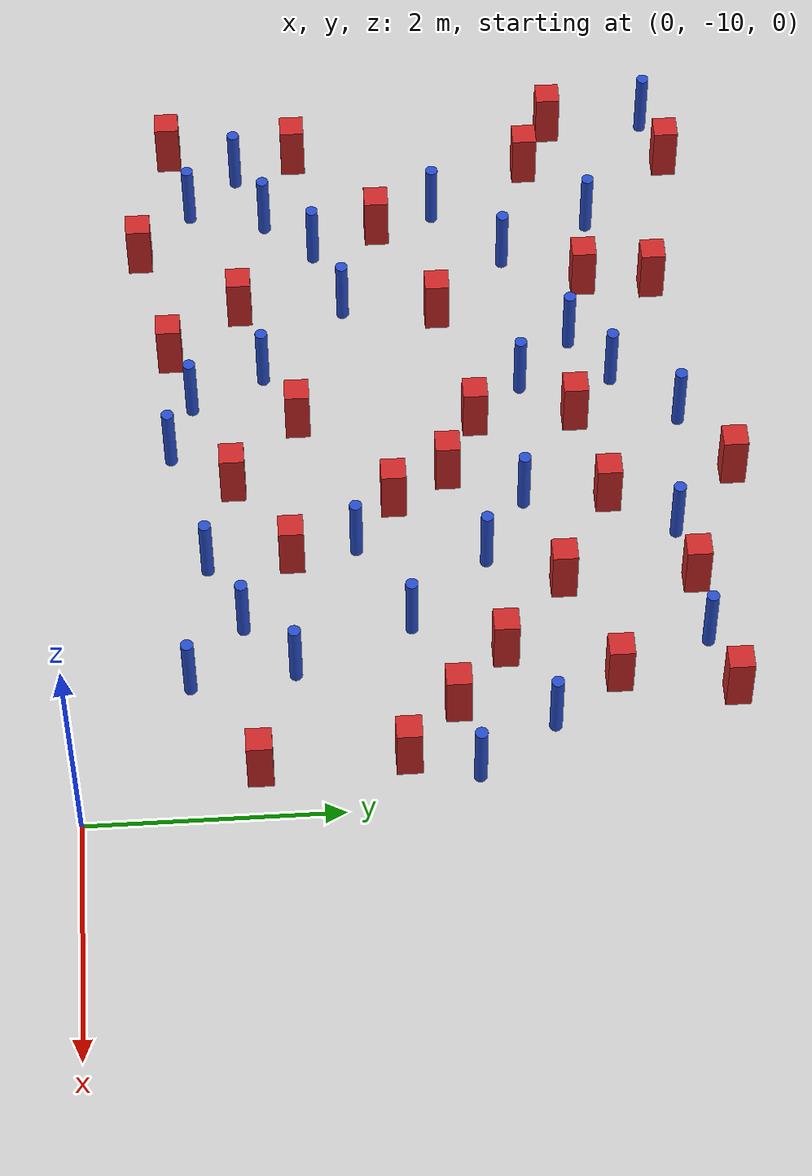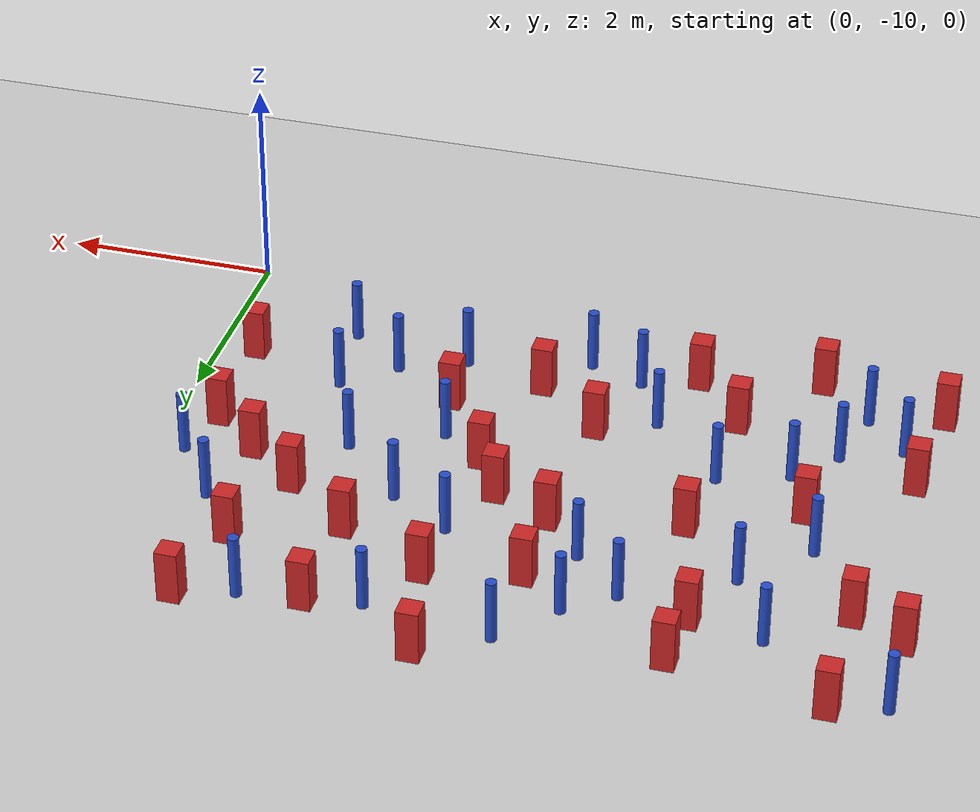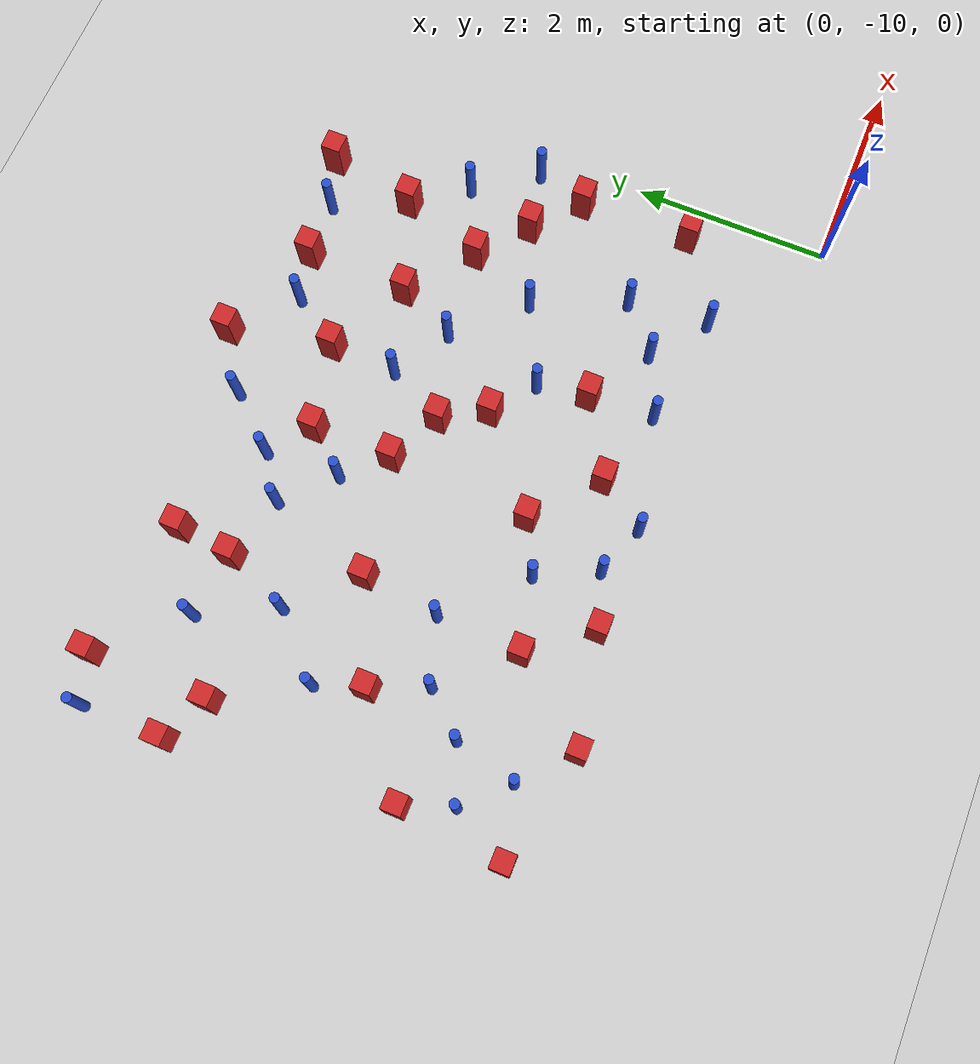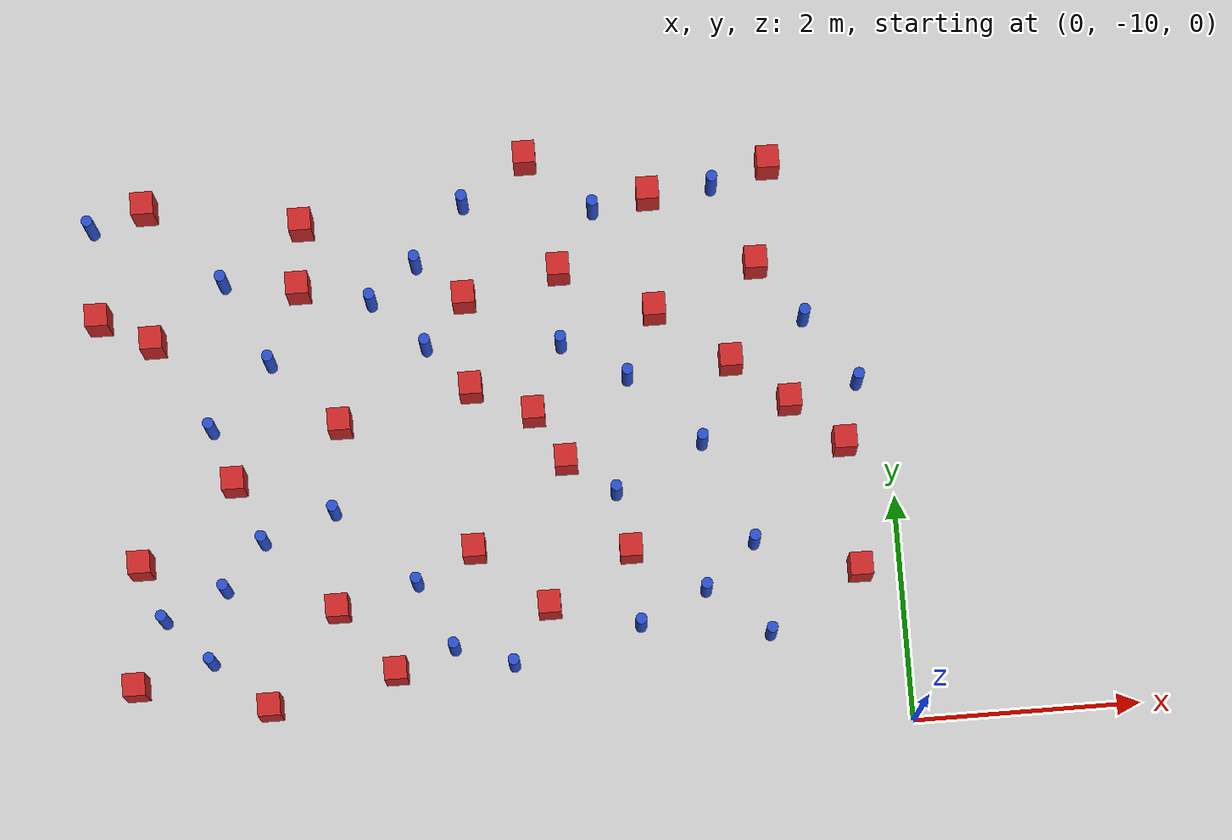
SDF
<sdf version="1.6">
 <world name="default">
  <model name="ground_plane">
   <static>1</static>
   <link name="link">
    <collision name="collision">
     <geometry><plane><normal>0 0 1</normal><size>100 100</size></plane></geometry>
     <surface><friction><ode><mu>100</mu><mu2>50</mu2></ode></friction></surface>
    </collision>
    <visual name="visual">
     <cast_shadows>0</cast_shadows>
     <geometry><plane><normal>0 0 1</normal><size>100 100</size></plane></geometry>
     <material>
      <ambient>1.0 1.0 1.0 1.0</ambient>
      <diffuse>0.8 0.8 0.8 1.0</diffuse>
      <specular>0.01 0.01 0.01 1.000000</specular>
     </material>
    </visual>
   </link>
  </model>
  <model name="square_post_obstacle0">
   <static>true</static>
   <pose>-4.85381373403 -7.01380886418 8.22691968438e-08 7.22125133819e-06 -7.54495500217e-07 2.29674213826e-05</pose>
   <link name="link">
    <pose>0 0 0.25 0 -0 0</pose>
    <inertial>
     <mass>100</mass>
     <inertia>
      <ixx>0.166667</ixx>
      <ixy>0</ixy>
      <ixz>0</ixz>
      <iyy>0.166667</iyy>
      <iyz>0</iyz>
      <izz>0.166667</izz>
     </inertia>
    </inertial>
    <collision name="collision"><geometry><box><size>.2 .2 .5</size></box></geometry></collision>
    <visual name="visual">
     <geometry><box><size>.2 .2 .5</size></box></geometry>
     <material>
      <script><name>Gazebo/Red</name><uri>file://media/materials/scripts/gazebo.material</uri></script>
     </material>
    </visual>
   </link>
  </model>
  <model name="square_post_obstacle1">
   <static>true</static>
   <pose>-6.47186797774 -4.94214520173 8.22691968438e-08 7.22125133819e-06 -7.54495500217e-07 2.29674213826e-05</pose>
   <link name="link">
    <pose>0 0 0.25 0 -0 0</pose>
    <inertial>
     <mass>100</mass>
     <inertia>
      <ixx>0.166667</ixx>
      <ixy>0</ixy>
      <ixz>0</ixz>
      <iyy>0.166667</iyy>
      <iyz>0</iyz>
      <izz>0.166667</izz>
     </inertia>
    </inertial>
    <collision name="collision"><geometry><box><size>.2 .2 .5</size></box></geometry></collision>
    <visual name="visual">
     <geometry><box><size>.2 .2 .5</size></box></geometry>
     <material>
      <script><name>Gazebo/Red</name><uri>file://media/materials/scripts/gazebo.material</uri></script>
     </material>
    </visual>
   </link>
  </model>
  <model name="square_post_obstacle6">
   <static>true</static>
   <pose>-4.50291544065 -9.248557642 8.22691968438e-08 7.2212513382e-06 -7.54495500217e-07 2.29674213826e-05</pose>
   <link name="link">
    <pose>0 0 0.25 0 -0 0</pose>
    <inertial>
     <mass>100</mass>
     <inertia>
      <ixx>0.166667</ixx>
      <ixy>0</ixy>
      <ixz>0</ixz>
      <iyy>0.166667</iyy>
      <iyz>0</iyz>
      <izz>0.166667</izz>
     </inertia>
    </inertial>
    <collision name="collision"><geometry><box><size>.2 .2 .5</size></box></geometry></collision>
    <visual name="visual">
     <geometry><box><size>.2 .2 .5</size></box></geometry>
     <material>
      <script><name>Gazebo/Red</name><uri>file://media/materials/scripts/gazebo.material</uri></script>
     </material>
    </visual>
   </link>
  </model>
  <model name="pole_obstacle4">
   <static>true</static>
   <pose>-4.50905731509 -5.93586208997 2.88873142074e-08 -9.90536690842e-09 4.60219948965e-07 -1.20965994976e-07</pose>
   <link name="link">
    <pose>0 0 0.3 0 -0 0</pose>
    <inertial>
     <mass>1</mass>
     <inertia><ixx>0.145833</ixx><ixy>0</ixy><ixz>0</ixz><iyy>0.145833</iyy><iyz>0</iyz><izz>0.125</izz></inertia>
    </inertial>
    <collision name="collision">
     <geometry><cylinder><radius>0.05</radius><length>.6</length></cylinder></geometry>
    </collision>
    <visual name="visual">
     <geometry><cylinder><radius>0.05</radius><length>.6</length></cylinder></geometry>
     <material>
      <script><name>Gazebo/Blue</name><uri>file://media/materials/scripts/gazebo.material</uri></script>
     </material>
    </visual>
   </link>
  </model>
  <model name="square_post_obstacle17">
   <static>true</static>
   <pose>-2.82780362628 -5.76743023222 8.22691968438e-08 7.2212513382e-06 -7.54495500217e-07 2.29674213826e-05</pose>
   <link name="link">
    <pose>0 0 0.25 0 -0 0</pose>
    <inertial>
     <mass>100</mass>
     <inertia>
      <ixx>0.166667</ixx>
      <ixy>0</ixy>
      <ixz>0</ixz>
      <iyy>0.166667</iyy>
      <iyz>0</iyz>
      <izz>0.166667</izz>
     </inertia>
    </inertial>
    <collision name="collision"><geometry><box><size>.2 .2 .5</size></box></geometry></collision>
    <visual name="visual">
     <geometry><box><size>.2 .2 .5</size></box></geometry>
     <material>
      <script><name>Gazebo/Red</name><uri>file://media/materials/scripts/gazebo.material</uri></script>
     </material>
    </visual>
   </link>
  </model>
  <model name="pole_obstacle14">
   <static>true</static>
   <pose>-1.40718546428 -5.10483130645 2.88873142074e-08 -9.90536689852e-09 4.60219948989e-07 -1.2096599496e-07</pose>
   <link name="link">
    <pose>0 0 0.3 0 -0 0</pose>
    <inertial>
     <mass>1</mass>
     <inertia><ixx>0.145833</ixx><ixy>0</ixy><ixz>0</ixz><iyy>0.145833</iyy><iyz>0</iyz><izz>0.125</izz></inertia>
    </inertial>
    <collision name="collision">
     <geometry><cylinder><radius>0.05</radius><length>.6</length></cylinder></geometry>
    </collision>
    <visual name="visual">
     <geometry><cylinder><radius>0.05</radius><length>.6</length></cylinder></geometry>
     <material>
      <script><name>Gazebo/Blue</name><uri>file://media/materials/scripts/gazebo.material</uri></script>
     </material>
    </visual>
   </link>
  </model>
  <model name="square_post_obstacle24">
   <static>true</static>
   <pose>-2.3696107004 -8.32431781453 8.22691968438e-08 7.22125133819e-06 -7.54495500217e-07 2.29674213826e-05</pose>
   <link name="link">
    <pose>0 0 0.25 0 -0 0</pose>
    <inertial>
     <mass>100</mass>
     <inertia>
      <ixx>0.166667</ixx>
      <ixy>0</ixy>
      <ixz>0</ixz>
      <iyy>0.166667</iyy>
      <iyz>0</iyz>
      <izz>0.166667</izz>
     </inertia>
    </inertial>
    <collision name="collision"><geometry><box><size>.2 .2 .5</size></box></geometry></collision>
    <visual name="visual">
     <geometry><box><size>.2 .2 .5</size></box></geometry>
     <material>
      <script><name>Gazebo/Red</name><uri>file://media/materials/scripts/gazebo.material</uri></script>
     </material>
    </visual>
   </link>
  </model>
  <model name="square_post_obstacle26">
   <static>true</static>
   <pose>-6.68108062466 -8.1485355378 8.22691968438e-08 7.2212513382e-06 -7.54495500217e-07 2.29674213826e-05</pose>
   <link name="link">
    <pose>0 0 0.25 0 -0 0</pose>
    <inertial>
     <mass>100</mass>
     <inertia>
      <ixx>0.166667</ixx>
      <ixy>0</ixy>
      <ixz>0</ixz>
      <iyy>0.166667</iyy>
      <iyz>0</iyz>
      <izz>0.166667</izz>
     </inertia>
    </inertial>
    <collision name="collision"><geometry><box><size>.2 .2 .5</size></box></geometry></collision>
    <visual name="visual">
     <geometry><box><size>.2 .2 .5</size></box></geometry>
     <material>
      <script><name>Gazebo/Red</name><uri>file://media/materials/scripts/gazebo.material</uri></script>
     </material>
    </visual>
   </link>
  </model>
  <model name="pole_obstacle25">
   <static>true</static>
   <pose>-5.80819248637 -5.67410705577 2.88873142074e-08 -9.90536690842e-09 4.60219948965e-07 -1.20965994976e-07</pose>
   <link name="link">
    <pose>0 0 0.3 0 -0 0</pose>
    <inertial>
     <mass>1</mass>
     <inertia><ixx>0.145833</ixx><ixy>0</ixy><ixz>0</ixz><iyy>0.145833</iyy><iyz>0</iyz><izz>0.125</izz></inertia>
    </inertial>
    <collision name="collision">
     <geometry><cylinder><radius>0.05</radius><length>.6</length></cylinder></geometry>
    </collision>
    <visual name="visual">
     <geometry><cylinder><radius>0.05</radius><length>.6</length></cylinder></geometry>
     <material>
      <script><name>Gazebo/Blue</name><uri>file://media/materials/scripts/gazebo.material</uri></script>
     </material>
    </visual>
   </link>
  </model>
  <model name="square_post_obstacle32">
   <static>true</static>
   <pose>-3.12139781006 -8.76833713452 8.22691968438e-08 7.22125133819e-06 -7.54495500217e-07 2.29674213826e-05</pose>
   <link name="link">
    <pose>0 0 0.25 0 -0 0</pose>
    <inertial>
     <mass>100</mass>
     <inertia>
      <ixx>0.166667</ixx>
      <ixy>0</ixy>
      <ixz>0</ixz>
      <iyy>0.166667</iyy>
      <iyz>0</iyz>
      <izz>0.166667</izz>
     </inertia>
    </inertial>
    <collision name="collision"><geometry><box><size>.2 .2 .5</size></box></geometry></collision>
    <visual name="visual">
     <geometry><box><size>.2 .2 .5</size></box></geometry>
     <material>
      <script><name>Gazebo/Red</name><uri>file://media/materials/scripts/gazebo.material</uri></script>
     </material>
    </visual>
   </link>
  </model>
  <model name="pole_obstacle35">
   <static>true</static>
   <pose>-5.43748549901 -6.42257018722 2.88873142074e-08 -9.90536690842e-09 4.60219948965e-07 -1.20965994976e-07</pose>
   <link name="link">
    <pose>0 0 0.3 0 -0 0</pose>
    <inertial>
     <mass>1</mass>
     <inertia><ixx>0.145833</ixx><ixy>0</ixy><ixz>0</ixz><iyy>0.145833</iyy><iyz>0</iyz><izz>0.125</izz></inertia>
    </inertial>
    <collision name="collision">
     <geometry><cylinder><radius>0.05</radius><length>.6</length></cylinder></geometry>
    </collision>
    <visual name="visual">
     <geometry><cylinder><radius>0.05</radius><length>.6</length></cylinder></geometry>
     <material>
      <script><name>Gazebo/Blue</name><uri>file://media/materials/scripts/gazebo.material</uri></script>
     </material>
    </visual>
   </link>
  </model>
  <model name="square_post_obstacle36">
   <static>true</static>
   <pose>-2.88315658047 -7.48788729309 8.22691968438e-08 7.2212513382e-06 -7.54495500217e-07 2.29674213826e-05</pose>
   <link name="link">
    <pose>0 0 0.25 0 -0 0</pose>
    <inertial>
     <mass>100</mass>
     <inertia>
      <ixx>0.166667</ixx>
      <ixy>0</ixy>
      <ixz>0</ixz>
      <iyy>0.166667</iyy>
      <iyz>0</iyz>
      <izz>0.166667</izz>
     </inertia>
    </inertial>
    <collision name="collision"><geometry><box><size>.2 .2 .5</size></box></geometry></collision>
    <visual name="visual">
     <geometry><box><size>.2 .2 .5</size></box></geometry>
     <material>
      <script><name>Gazebo/Red</name><uri>file://media/materials/scripts/gazebo.material</uri></script>
     </material>
    </visual>
   </link>
  </model>
  <model name="pole_obstacle43">
   <static>true</static>
   <pose>-2.28324432116 -6.78165160745 2.88873142074e-08 -9.90536689859e-09 4.60219948989e-07 -1.20965994961e-07</pose>
   <link name="link">
    <pose>0 0 0.3 0 -0 0</pose>
    <inertial>
     <mass>1</mass>
     <inertia><ixx>0.145833</ixx><ixy>0</ixy><ixz>0</ixz><iyy>0.145833</iyy><iyz>0</iyz><izz>0.125</izz></inertia>
    </inertial>
    <collision name="collision">
     <geometry><cylinder><radius>0.05</radius><length>.6</length></cylinder></geometry>
    </collision>
    <visual name="visual">
     <geometry><cylinder><radius>0.05</radius><length>.6</length></cylinder></geometry>
     <material>
      <script><name>Gazebo/Blue</name><uri>file://media/materials/scripts/gazebo.material</uri></script>
     </material>
    </visual>
   </link>
  </model>
  <model name="square_post_obstacle48">
   <static>true</static>
   <pose>-0.414177734356 -7.50862047651 8.22691968438e-08 7.22125133819e-06 -7.54495500217e-07 2.29674213826e-05</pose>
   <link name="link">
    <pose>0 0 0.25 0 -0 0</pose>
    <inertial>
     <mass>100</mass>
     <inertia>
      <ixx>0.166667</ixx>
      <ixy>0</ixy>
      <ixz>0</ixz>
      <iyy>0.166667</iyy>
      <iyz>0</iyz>
      <izz>0.166667</izz>
     </inertia>
    </inertial>
    <collision name="collision"><geometry><box><size>.2 .2 .5</size></box></geometry></collision>
    <visual name="visual">
     <geometry><box><size>.2 .2 .5</size></box></geometry>
     <material>
      <script><name>Gazebo/Red</name><uri>file://media/materials/scripts/gazebo.material</uri></script>
     </material>
    </visual>
   </link>
  </model>
  <model name="square_post_obstacle54">
   <static>true</static>
   <pose>-5.81901108878 -7.46774708978 8.22691968438e-08 7.2212513382e-06 -7.54495500217e-07 2.29674213826e-05</pose>
   <link name="link">
    <pose>0 0 0.25 0 -0 0</pose>
    <inertial>
     <mass>100</mass>
     <inertia>
      <ixx>0.166667</ixx>
      <ixy>0</ixy>
      <ixz>0</ixz>
      <iyy>0.166667</iyy>
      <iyz>0</iyz>
      <izz>0.166667</izz>
     </inertia>
    </inertial>
    <collision name="collision"><geometry><box><size>.2 .2 .5</size></box></geometry></collision>
    <visual name="visual">
     <geometry><box><size>.2 .2 .5</size></box></geometry>
     <material>
      <script><name>Gazebo/Red</name><uri>file://media/materials/scripts/gazebo.material</uri></script>
     </material>
    </visual>
   </link>
  </model>
  <model name="pole_obstacle55">
   <static>true</static>
   <pose>-4.95335520146 -7.79737427724 2.88873142074e-08 -9.90536690842e-09 4.60219948965e-07 -1.20965994976e-07</pose>
   <link name="link">
    <pose>0 0 0.3 0 -0 0</pose>
    <inertial>
     <mass>1</mass>
     <inertia><ixx>0.145833</ixx><ixy>0</ixy><ixz>0</ixz><iyy>0.145833</iyy><iyz>0</iyz><izz>0.125</izz></inertia>
    </inertial>
    <collision name="collision">
     <geometry><cylinder><radius>0.05</radius><length>.6</length></cylinder></geometry>
    </collision>
    <visual name="visual">
     <geometry><cylinder><radius>0.05</radius><length>.6</length></cylinder></geometry>
     <material>
      <script><name>Gazebo/Blue</name><uri>file://media/materials/scripts/gazebo.material</uri></script>
     </material>
    </visual>
   </link>
  </model>
  <model name="square_post_obstacle61">
   <static>true</static>
   <pose>-3.13918415949 -7.03844658991 8.22691968438e-08 7.2212513382e-06 -7.54495500217e-07 2.29674213826e-05</pose>
   <link name="link">
    <pose>0 0 0.25 0 -0 0</pose>
    <inertial>
     <mass>100</mass>
     <inertia>
      <ixx>0.166667</ixx>
      <ixy>0</ixy>
      <ixz>0</ixz>
      <iyy>0.166667</iyy>
      <iyz>0</iyz>
      <izz>0.166667</izz>
     </inertia>
    </inertial>
    <collision name="collision"><geometry><box><size>.2 .2 .5</size></box></geometry></collision>
    <visual name="visual">
     <geometry><box><size>.2 .2 .5</size></box></geometry>
     <material>
      <script><name>Gazebo/Red</name><uri>file://media/materials/scripts/gazebo.material</uri></script>
     </material>
    </visual>
   </link>
  </model>
  <model name="pole_obstacle62">
   <static>true</static>
   <pose>-6.50117904555 -8.65052162242 2.88873142074e-08 -9.9053668967e-09 4.60219948993e-07 -1.20965994957e-07</pose>
   <link name="link">
    <pose>0 0 0.3 0 -0 0</pose>
    <inertial>
     <mass>1</mass>
     <inertia><ixx>0.145833</ixx><ixy>0</ixy><ixz>0</ixz><iyy>0.145833</iyy><iyz>0</iyz><izz>0.125</izz></inertia>
    </inertial>
    <collision name="collision">
     <geometry><cylinder><radius>0.05</radius><length>.6</length></cylinder></geometry>
    </collision>
    <visual name="visual">
     <geometry><cylinder><radius>0.05</radius><length>.6</length></cylinder></geometry>
     <material>
      <script><name>Gazebo/Blue</name><uri>file://media/materials/scripts/gazebo.material</uri></script>
     </material>
    </visual>
   </link>
  </model>
  <model name="pole_obstacle67">
   <static>true</static>
   <pose>-4.26582324732 -8.48660297973 2.88873142074e-08 -9.9053668967e-09 4.60219948993e-07 -1.20965994957e-07</pose>
   <link name="link">
    <pose>0 0 0.3 0 -0 0</pose>
    <inertial>
     <mass>1</mass>
     <inertia><ixx>0.145833</ixx><ixy>0</ixy><ixz>0</ixz><iyy>0.145833</iyy><iyz>0</iyz><izz>0.125</izz></inertia>
    </inertial>
    <collision name="collision">
     <geometry><cylinder><radius>0.05</radius><length>.6</length></cylinder></geometry>
    </collision>
    <visual name="visual">
     <geometry><cylinder><radius>0.05</radius><length>.6</length></cylinder></geometry>
     <material>
      <script><name>Gazebo/Blue</name><uri>file://media/materials/scripts/gazebo.material</uri></script>
     </material>
    </visual>
   </link>
  </model>
  <model name="square_post_obstacle73">
   <static>true</static>
   <pose>-3.67750102623 -6.77949602352 8.22691968438e-08 7.2212513382e-06 -7.54495500217e-07 2.29674213826e-05</pose>
   <link name="link">
    <pose>0 0 0.25 0 -0 0</pose>
    <inertial>
     <mass>100</mass>
     <inertia>
      <ixx>0.166667</ixx>
      <ixy>0</ixy>
      <ixz>0</ixz>
      <iyy>0.166667</iyy>
      <iyz>0</iyz>
      <izz>0.166667</izz>
     </inertia>
    </inertial>
    <collision name="collision"><geometry><box><size>.2 .2 .5</size></box></geometry></collision>
    <visual name="visual">
     <geometry><box><size>.2 .2 .5</size></box></geometry>
     <material>
      <script><name>Gazebo/Red</name><uri>file://media/materials/scripts/gazebo.material</uri></script>
     </material>
    </visual>
   </link>
  </model>
  <model name="pole_obstacle75">
   <static>true</static>
   <pose>-0.683085949238 -6.36491457174 2.88873142074e-08 -9.90536689661e-09 4.60219948993e-07 -1.20965994957e-07</pose>
   <link name="link">
    <pose>0 0 0.3 0 -0 0</pose>
    <inertial>
     <mass>1</mass>
     <inertia><ixx>0.145833</ixx><ixy>0</ixy><ixz>0</ixz><iyy>0.145833</iyy><iyz>0</iyz><izz>0.125</izz></inertia>
    </inertial>
    <collision name="collision">
     <geometry><cylinder><radius>0.05</radius><length>.6</length></cylinder></geometry>
    </collision>
    <visual name="visual">
     <geometry><cylinder><radius>0.05</radius><length>.6</length></cylinder></geometry>
     <material>
      <script><name>Gazebo/Blue</name><uri>file://media/materials/scripts/gazebo.material</uri></script>
     </material>
    </visual>
   </link>
  </model>
  <model name="pole_obstacle80">
   <static>true</static>
   <pose>-3.46527591637 -9.26394960806 2.88873142074e-08 -9.90536692318e-09 4.6021994893e-07 -1.20965994988e-07</pose>
   <link name="link">
    <pose>0 0 0.3 0 -0 0</pose>
    <inertial>
     <mass>1</mass>
     <inertia><ixx>0.145833</ixx><ixy>0</ixy><ixz>0</ixz><iyy>0.145833</iyy><iyz>0</iyz><izz>0.125</izz></inertia>
    </inertial>
    <collision name="collision">
     <geometry><cylinder><radius>0.05</radius><length>.6</length></cylinder></geometry>
    </collision>
    <visual name="visual">
     <geometry><cylinder><radius>0.05</radius><length>.6</length></cylinder></geometry>
     <material>
      <script><name>Gazebo/Blue</name><uri>file://media/materials/scripts/gazebo.material</uri></script>
     </material>
    </visual>
   </link>
  </model>
  <model name="pole_obstacle86">
   <static>true</static>
   <pose>-4.04900258822 -6.37889886286 2.88873142074e-08 -9.90536691069e-09 4.6021994896e-07 -1.20965994979e-07</pose>
   <link name="link">
    <pose>0 0 0.3 0 -0 0</pose>
    <inertial>
     <mass>1</mass>
     <inertia><ixx>0.145833</ixx><ixy>0</ixy><ixz>0</ixz><iyy>0.145833</iyy><iyz>0</iyz><izz>0.125</izz></inertia>
    </inertial>
    <collision name="collision">
     <geometry><cylinder><radius>0.05</radius><length>.6</length></cylinder></geometry>
    </collision>
    <visual name="visual">
     <geometry><cylinder><radius>0.05</radius><length>.6</length></cylinder></geometry>
     <material>
      <script><name>Gazebo/Blue</name><uri>file://media/materials/scripts/gazebo.material</uri></script>
     </material>
    </visual>
   </link>
  </model>
  <model name="pole_obstacle95">
   <static>true</static>
   <pose>-1.66733415587 -7.41206430766 2.88873142074e-08 -9.90536689852e-09 4.60219948989e-07 -1.2096599496e-07</pose>
   <link name="link">
    <pose>0 0 0.3 0 -0 0</pose>
    <inertial>
     <mass>1</mass>
     <inertia><ixx>0.145833</ixx><ixy>0</ixy><ixz>0</ixz><iyy>0.145833</iyy><iyz>0</iyz><izz>0.125</izz></inertia>
    </inertial>
    <collision name="collision">
     <geometry><cylinder><radius>0.05</radius><length>.6</length></cylinder></geometry>
    </collision>
    <visual name="visual">
     <geometry><cylinder><radius>0.05</radius><length>.6</length></cylinder></geometry>
     <material>
      <script><name>Gazebo/Blue</name><uri>file://media/materials/scripts/gazebo.material</uri></script>
     </material>
    </visual>
   </link>
  </model>
  <model name="square_post_obstacle89">
   <static>true</static>
   <pose>-3.05550280685 -4.73470141793 8.22691968438e-08 7.2212513382e-06 -7.54495500217e-07 2.29674213826e-05</pose>
   <link name="link">
    <pose>0 0 0.25 0 -0 0</pose>
    <inertial>
     <mass>100</mass>
     <inertia>
      <ixx>0.166667</ixx>
      <ixy>0</ixy>
      <ixz>0</ixz>
      <iyy>0.166667</iyy>
      <iyz>0</iyz>
      <izz>0.166667</izz>
     </inertia>
    </inertial>
    <collision name="collision"><geometry><box><size>.2 .2 .5</size></box></geometry></collision>
    <visual name="visual">
     <geometry><box><size>.2 .2 .5</size></box></geometry>
     <material>
      <script><name>Gazebo/Red</name><uri>file://media/materials/scripts/gazebo.material</uri></script>
     </material>
    </visual>
   </link>
  </model>
  <model name="square_post_obstacle90">
   <static>true</static>
   <pose>-1.98327669382 -5.1438406237 8.22691968438e-08 7.2212513382e-06 -7.54495500217e-07 2.29674213826e-05</pose>
   <link name="link">
    <pose>0 0 0.25 0 -0 0</pose>
    <inertial>
     <mass>100</mass>
     <inertia>
      <ixx>0.166667</ixx>
      <ixy>0</ixy>
      <ixz>0</ixz>
      <iyy>0.166667</iyy>
      <iyz>0</iyz>
      <izz>0.166667</izz>
     </inertia>
    </inertial>
    <collision name="collision"><geometry><box><size>.2 .2 .5</size></box></geometry></collision>
    <visual name="visual">
     <geometry><box><size>.2 .2 .5</size></box></geometry>
     <material>
      <script><name>Gazebo/Red</name><uri>file://media/materials/scripts/gazebo.material</uri></script>
     </material>
    </visual>
   </link>
  </model>
  <model name="square_post_obstacle99">
   <static>true</static>
   <pose>-0.370147964577 -8.6416216482 8.22691968438e-08 7.2212513382e-06 -7.54495500217e-07 2.29674213826e-05</pose>
   <link name="link">
    <pose>0 0 0.25 0 -0 0</pose>
    <inertial>
     <mass>100</mass>
     <inertia>
      <ixx>0.166667</ixx>
      <ixy>0</ixy>
      <ixz>0</ixz>
      <iyy>0.166667</iyy>
      <iyz>0</iyz>
      <izz>0.166667</izz>
     </inertia>
    </inertial>
    <collision name="collision"><geometry><box><size>.2 .2 .5</size></box></geometry></collision>
    <visual name="visual">
     <geometry><box><size>.2 .2 .5</size></box></geometry>
     <material>
      <script><name>Gazebo/Red</name><uri>file://media/materials/scripts/gazebo.material</uri></script>
     </material>
    </visual>
   </link>
  </model>
  <model name="square_post_obstacle101">
   <static>true</static>
   <pose>-5.14585240252 -5.7636515616 8.22691968438e-08 7.22125133819e-06 -7.54495500217e-07 2.29674213826e-05</pose>
   <link name="link">
    <pose>0 0 0.25 0 -0 0</pose>
    <inertial>
     <mass>100</mass>
     <inertia>
      <ixx>0.166667</ixx>
      <ixy>0</ixy>
      <ixz>0</ixz>
      <iyy>0.166667</iyy>
      <iyz>0</iyz>
      <izz>0.166667</izz>
     </inertia>
    </inertial>
    <collision name="collision"><geometry><box><size>.2 .2 .5</size></box></geometry></collision>
    <visual name="visual">
     <geometry><box><size>.2 .2 .5</size></box></geometry>
     <material>
      <script><name>Gazebo/Red</name><uri>file://media/materials/scripts/gazebo.material</uri></script>
     </material>
    </visual>
   </link>
  </model>
  <model name="pole_obstacle129">
   <static>true</static>
   <pose>-5.59248034039 -8.01732432609 2.88873142074e-08 -9.9053669103e-09 4.60219948961e-07 -1.20965994981e-07</pose>
   <link name="link">
    <pose>0 0 0.3 0 -0 0</pose>
    <inertial>
     <mass>1</mass>
     <inertia><ixx>0.145833</ixx><ixy>0</ixy><ixz>0</ixz><iyy>0.145833</iyy><iyz>0</iyz><izz>0.125</izz></inertia>
    </inertial>
    <collision name="collision">
     <geometry><cylinder><radius>0.05</radius><length>.6</length></cylinder></geometry>
    </collision>
    <visual name="visual">
     <geometry><cylinder><radius>0.05</radius><length>.6</length></cylinder></geometry>
     <material>
      <script><name>Gazebo/Blue</name><uri>file://media/materials/scripts/gazebo.material</uri></script>
     </material>
    </visual>
   </link>
  </model>
  <model name="square_post_obstacle116">
   <static>true</static>
   <pose>-5.62174275753 -9.4824248263 8.22691968438e-08 7.2212513382e-06 -7.54495500217e-07 2.29674213826e-05</pose>
   <link name="link">
    <pose>0 0 0.25 0 -0 0</pose>
    <inertial>
     <mass>100</mass>
     <inertia>
      <ixx>0.166667</ixx>
      <ixy>0</ixy>
      <ixz>0</ixz>
      <iyy>0.166667</iyy>
      <iyz>0</iyz>
      <izz>0.166667</izz>
     </inertia>
    </inertial>
    <collision name="collision"><geometry><box><size>.2 .2 .5</size></box></geometry></collision>
    <visual name="visual">
     <geometry><box><size>.2 .2 .5</size></box></geometry>
     <material>
      <script><name>Gazebo/Red</name><uri>file://media/materials/scripts/gazebo.material</uri></script>
     </material>
    </visual>
   </link>
  </model>
  <model name="square_post_obstacle123">
   <static>true</static>
   <pose>-0.894332866084 -4.94128056334 8.22691968438e-08 7.22125133819e-06 -7.54495500217e-07 2.29674213826e-05</pose>
   <link name="link">
    <pose>0 0 0.25 0 -0 0</pose>
    <inertial>
     <mass>100</mass>
     <inertia>
      <ixx>0.166667</ixx>
      <ixy>0</ixy>
      <ixz>0</ixz>
      <iyy>0.166667</iyy>
      <iyz>0</iyz>
      <izz>0.166667</izz>
     </inertia>
    </inertial>
    <collision name="collision"><geometry><box><size>.2 .2 .5</size></box></geometry></collision>
    <visual name="visual">
     <geometry><box><size>.2 .2 .5</size></box></geometry>
     <material>
      <script><name>Gazebo/Red</name><uri>file://media/materials/scripts/gazebo.material</uri></script>
     </material>
    </visual>
   </link>
  </model>
  <model name="pole_obstacle141">
   <static>true</static>
   <pose>-2.85269710754 -6.44119109425 2.88873142074e-08 -9.90536689859e-09 4.60219948989e-07 -1.20965994961e-07</pose>
   <link name="link">
    <pose>0 0 0.3 0 -0 0</pose>
    <inertial>
     <mass>1</mass>
     <inertia><ixx>0.145833</ixx><ixy>0</ixy><ixz>0</ixz><iyy>0.145833</iyy><iyz>0</iyz><izz>0.125</izz></inertia>
    </inertial>
    <collision name="collision">
     <geometry><cylinder><radius>0.05</radius><length>.6</length></cylinder></geometry>
    </collision>
    <visual name="visual">
     <geometry><cylinder><radius>0.05</radius><length>.6</length></cylinder></geometry>
     <material>
      <script><name>Gazebo/Blue</name><uri>file://media/materials/scripts/gazebo.material</uri></script>
     </material>
    </visual>
   </link>
  </model>
  <model name="square_post_obstacle132">
   <static>true</static>
   <pose>-6.93217549782 -5.9207904252 8.22691968438e-08 7.2212513382e-06 -7.54495500217e-07 2.29674213826e-05</pose>
   <link name="link">
    <pose>0 0 0.25 0 -0 0</pose>
    <inertial>
     <mass>100</mass>
     <inertia>
      <ixx>0.166667</ixx>
      <ixy>0</ixy>
      <ixz>0</ixz>
      <iyy>0.166667</iyy>
      <iyz>0</iyz>
      <izz>0.166667</izz>
     </inertia>
    </inertial>
    <collision name="collision"><geometry><box><size>.2 .2 .5</size></box></geometry></collision>
    <visual name="visual">
     <geometry><box><size>.2 .2 .5</size></box></geometry>
     <material>
      <script><name>Gazebo/Red</name><uri>file://media/materials/scripts/gazebo.material</uri></script>
     </material>
    </visual>
   </link>
  </model>
  <model name="pole_obstacle145">
   <static>true</static>
   <pose>-2.33066956509 -8.99511587378 2.88873142074e-08 -9.90536692318e-09 4.6021994893e-07 -1.20965994988e-07</pose>
   <link name="link">
    <pose>0 0 0.3 0 -0 0</pose>
    <inertial>
     <mass>1</mass>
     <inertia><ixx>0.145833</ixx><ixy>0</ixy><ixz>0</ixz><iyy>0.145833</iyy><iyz>0</iyz><izz>0.125</izz></inertia>
    </inertial>
    <collision name="collision">
     <geometry><cylinder><radius>0.05</radius><length>.6</length></cylinder></geometry>
    </collision>
    <visual name="visual">
     <geometry><cylinder><radius>0.05</radius><length>.6</length></cylinder></geometry>
     <material>
      <script><name>Gazebo/Blue</name><uri>file://media/materials/scripts/gazebo.material</uri></script>
     </material>
    </visual>
   </link>
  </model>
  <model name="square_post_obstacle137">
   <static>true</static>
   <pose>-4.9767893579 -8.65912760088 8.22691968438e-08 7.22125133819e-06 -7.54495500217e-07 2.29674213826e-05</pose>
   <link name="link">
    <pose>0 0 0.25 0 -0 0</pose>
    <inertial>
     <mass>100</mass>
     <inertia>
      <ixx>0.166667</ixx>
      <ixy>0</ixy>
      <ixz>0</ixz>
      <iyy>0.166667</iyy>
      <iyz>0</iyz>
      <izz>0.166667</izz>
     </inertia>
    </inertial>
    <collision name="collision"><geometry><box><size>.2 .2 .5</size></box></geometry></collision>
    <visual name="visual">
     <geometry><box><size>.2 .2 .5</size></box></geometry>
     <material>
      <script><name>Gazebo/Red</name><uri>file://media/materials/scripts/gazebo.material</uri></script>
     </material>
    </visual>
   </link>
  </model>
  <model name="square_post_obstacle138">
   <static>true</static>
   <pose>-1.36089250989 -6.70186240207 8.22691968438e-08 7.2212513382e-06 -7.54495500217e-07 2.29674213826e-05</pose>
   <link name="link">
    <pose>0 0 0.25 0 -0 0</pose>
    <inertial>
     <mass>100</mass>
     <inertia>
      <ixx>0.166667</ixx>
      <ixy>0</ixy>
      <ixz>0</ixz>
      <iyy>0.166667</iyy>
      <iyz>0</iyz>
      <izz>0.166667</izz>
     </inertia>
    </inertial>
    <collision name="collision"><geometry><box><size>.2 .2 .5</size></box></geometry></collision>
    <visual name="visual">
     <geometry><box><size>.2 .2 .5</size></box></geometry>
     <material>
      <script><name>Gazebo/Red</name><uri>file://media/materials/scripts/gazebo.material</uri></script>
     </material>
    </visual>
   </link>
  </model>
  <model name="square_post_obstacle140">
   <static>true</static>
   <pose>-6.46290536273 -6.16054319915 8.22691968438e-08 7.22125133819e-06 -7.54495500217e-07 2.29674213826e-05</pose>
   <link name="link">
    <pose>0 0 0.25 0 -0 0</pose>
    <inertial>
     <mass>100</mass>
     <inertia>
      <ixx>0.166667</ixx>
      <ixy>0</ixy>
      <ixz>0</ixz>
      <iyy>0.166667</iyy>
      <iyz>0</iyz>
      <izz>0.166667</izz>
     </inertia>
    </inertial>
    <collision name="collision"><geometry><box><size>.2 .2 .5</size></box></geometry></collision>
    <visual name="visual">
     <geometry><box><size>.2 .2 .5</size></box></geometry>
     <material>
      <script><name>Gazebo/Red</name><uri>file://media/materials/scripts/gazebo.material</uri></script>
     </material>
    </visual>
   </link>
  </model>
  <model name="pole_obstacle153">
   <static>true</static>
   <pose>-1.7346316763 -8.72866111763 2.88873142074e-08 -9.90536690474e-09 4.60219948974e-07 -1.2096599497e-07</pose>
   <link name="link">
    <pose>0 0 0.3 0 -0 0</pose>
    <inertial>
     <mass>1</mass>
     <inertia><ixx>0.145833</ixx><ixy>0</ixy><ixz>0</ixz><iyy>0.145833</iyy><iyz>0</iyz><izz>0.125</izz></inertia>
    </inertial>
    <collision name="collision">
     <geometry><cylinder><radius>0.05</radius><length>.6</length></cylinder></geometry>
    </collision>
    <visual name="visual">
     <geometry><cylinder><radius>0.05</radius><length>.6</length></cylinder></geometry>
     <material>
      <script><name>Gazebo/Blue</name><uri>file://media/materials/scripts/gazebo.material</uri></script>
     </material>
    </visual>
   </link>
  </model>
  <model name="pole_obstacle155">
   <static>true</static>
   <pose>-0.255874339478 -6.97443246768 2.88873142074e-08 -9.90536689618e-09 4.60219948994e-07 -1.20965994956e-07</pose>
   <link name="link">
    <pose>0 0 0.3 0 -0 0</pose>
    <inertial>
     <mass>1</mass>
     <inertia><ixx>0.145833</ixx><ixy>0</ixy><ixz>0</ixz><iyy>0.145833</iyy><iyz>0</iyz><izz>0.125</izz></inertia>
    </inertial>
    <collision name="collision">
     <geometry><cylinder><radius>0.05</radius><length>.6</length></cylinder></geometry>
    </collision>
    <visual name="visual">
     <geometry><cylinder><radius>0.05</radius><length>.6</length></cylinder></geometry>
     <material>
      <script><name>Gazebo/Blue</name><uri>file://media/materials/scripts/gazebo.material</uri></script>
     </material>
    </visual>
   </link>
  </model>
  <model name="pole_obstacle156">
   <static>true</static>
   <pose>-6.10907393041 -9.05160181653 2.88873142074e-08 -9.9053668967e-09 4.60219948993e-07 -1.20965994957e-07</pose>
   <link name="link">
    <pose>0 0 0.3 0 -0 0</pose>
    <inertial>
     <mass>1</mass>
     <inertia><ixx>0.145833</ixx><ixy>0</ixy><ixz>0</ixz><iyy>0.145833</iyy><iyz>0</iyz><izz>0.125</izz></inertia>
    </inertial>
    <collision name="collision">
     <geometry><cylinder><radius>0.05</radius><length>.6</length></cylinder></geometry>
    </collision>
    <visual name="visual">
     <geometry><cylinder><radius>0.05</radius><length>.6</length></cylinder></geometry>
     <material>
      <script><name>Gazebo/Blue</name><uri>file://media/materials/scripts/gazebo.material</uri></script>
     </material>
    </visual>
   </link>
  </model>
  <model name="pole_obstacle159">
   <static>true</static>
   <pose>-1.19748792928 -9.15584911949 2.88873142074e-08 -9.90536690474e-09 4.60219948974e-07 -1.2096599497e-07</pose>
   <link name="link">
    <pose>0 0 0.3 0 -0 0</pose>
    <inertial>
     <mass>1</mass>
     <inertia><ixx>0.145833</ixx><ixy>0</ixy><ixz>0</ixz><iyy>0.145833</iyy><iyz>0</iyz><izz>0.125</izz></inertia>
    </inertial>
    <collision name="collision">
     <geometry><cylinder><radius>0.05</radius><length>.6</length></cylinder></geometry>
    </collision>
    <visual name="visual">
     <geometry><cylinder><radius>0.05</radius><length>.6</length></cylinder></geometry>
     <material>
      <script><name>Gazebo/Blue</name><uri>file://media/materials/scripts/gazebo.material</uri></script>
     </material>
    </visual>
   </link>
  </model>
  <model name="square_post_obstacle162">
   <static>true</static>
   <pose>-3.74739371829 -8.22291315457 8.22691968438e-08 7.22125133819e-06 -7.54495500217e-07 2.29674213826e-05</pose>
   <link name="link">
    <pose>0 0 0.25 0 -0 0</pose>
    <inertial>
     <mass>100</mass>
     <inertia>
      <ixx>0.166667</ixx>
      <ixy>0</ixy>
      <ixz>0</ixz>
      <iyy>0.166667</iyy>
      <iyz>0</iyz>
      <izz>0.166667</izz>
     </inertia>
    </inertial>
    <collision name="collision"><geometry><box><size>.2 .2 .5</size></box></geometry></collision>
    <visual name="visual">
     <geometry><box><size>.2 .2 .5</size></box></geometry>
     <material>
      <script><name>Gazebo/Red</name><uri>file://media/materials/scripts/gazebo.material</uri></script>
     </material>
    </visual>
   </link>
  </model>
  <model name="pole_obstacle173">
   <static>true</static>
   <pose>-2.48180736223 -5.24504051042 2.88873142074e-08 -9.90536689859e-09 4.60219948989e-07 -1.20965994961e-07</pose>
   <link name="link">
    <pose>0 0 0.3 0 -0 0</pose>
    <inertial>
     <mass>1</mass>
     <inertia><ixx>0.145833</ixx><ixy>0</ixy><ixz>0</ixz><iyy>0.145833</iyy><iyz>0</iyz><izz>0.125</izz></inertia>
    </inertial>
    <collision name="collision">
     <geometry><cylinder><radius>0.05</radius><length>.6</length></cylinder></geometry>
    </collision>
    <visual name="visual">
     <geometry><cylinder><radius>0.05</radius><length>.6</length></cylinder></geometry>
     <material>
      <script><name>Gazebo/Blue</name><uri>file://media/materials/scripts/gazebo.material</uri></script>
     </material>
    </visual>
   </link>
  </model>
  <model name="square_post_obstacle165">
   <static>true</static>
   <pose>-3.68414165602 -5.95966250469 8.22691968438e-08 7.2212513382e-06 -7.54495500217e-07 2.29674213826e-05</pose>
   <link name="link">
    <pose>0 0 0.25 0 -0 0</pose>
    <inertial>
     <mass>100</mass>
     <inertia>
      <ixx>0.166667</ixx>
      <ixy>0</ixy>
      <ixz>0</ixz>
      <iyy>0.166667</iyy>
      <iyz>0</iyz>
      <izz>0.166667</izz>
     </inertia>
    </inertial>
    <collision name="collision"><geometry><box><size>.2 .2 .5</size></box></geometry></collision>
    <visual name="visual">
     <geometry><box><size>.2 .2 .5</size></box></geometry>
     <material>
      <script><name>Gazebo/Red</name><uri>file://media/materials/scripts/gazebo.material</uri></script>
     </material>
    </visual>
   </link>
  </model>
  <model name="pole_obstacle180">
   <static>true</static>
   <pose>-3.63581803697 -5.10963121112 2.88873142074e-08 -9.90536689859e-09 4.60219948989e-07 -1.20965994961e-07</pose>
   <link name="link">
    <pose>0 0 0.3 0 -0 0</pose>
    <inertial>
     <mass>1</mass>
     <inertia><ixx>0.145833</ixx><ixy>0</ixy><ixz>0</ixz><iyy>0.145833</iyy><iyz>0</iyz><izz>0.125</izz></inertia>
    </inertial>
    <collision name="collision">
     <geometry><cylinder><radius>0.05</radius><length>.6</length></cylinder></geometry>
    </collision>
    <visual name="visual">
     <geometry><cylinder><radius>0.05</radius><length>.6</length></cylinder></geometry>
     <material>
      <script><name>Gazebo/Blue</name><uri>file://media/materials/scripts/gazebo.material</uri></script>
     </material>
    </visual>
   </link>
  </model>
  <model name="square_post_obstacle194">
   <static>true</static>
   <pose>-2.00296682317 -6.19419911596 8.22691968438e-08 7.22125133819e-06 -7.54495500217e-07 2.29674213826e-05</pose>
   <link name="link">
    <pose>0 0 0.25 0 -0 0</pose>
    <inertial>
     <mass>100</mass>
     <inertia>
      <ixx>0.166667</ixx>
      <ixy>0</ixy>
      <ixz>0</ixz>
      <iyy>0.166667</iyy>
      <iyz>0</iyz>
      <izz>0.166667</izz>
     </inertia>
    </inertial>
    <collision name="collision"><geometry><box><size>.2 .2 .5</size></box></geometry></collision>
    <visual name="visual">
     <geometry><box><size>.2 .2 .5</size></box></geometry>
     <material>
      <script><name>Gazebo/Red</name><uri>file://media/materials/scripts/gazebo.material</uri></script>
     </material>
    </visual>
   </link>
  </model>
  <model name="square_post_obstacle202">
   <static>true</static>
   <pose>-6.7837260144 -9.2209381962 8.22691968438e-08 7.2212513382e-06 -7.54495500217e-07 2.29674213826e-05</pose>
   <link name="link">
    <pose>0 0 0.25 0 -0 0</pose>
    <inertial>
     <mass>100</mass>
     <inertia>
      <ixx>0.166667</ixx>
      <ixy>0</ixy>
      <ixz>0</ixz>
      <iyy>0.166667</iyy>
      <iyz>0</iyz>
      <izz>0.166667</izz>
     </inertia>
    </inertial>
    <collision name="collision"><geometry><box><size>.2 .2 .5</size></box></geometry></collision>
    <visual name="visual">
     <geometry><box><size>.2 .2 .5</size></box></geometry>
     <material>
      <script><name>Gazebo/Red</name><uri>file://media/materials/scripts/gazebo.material</uri></script>
     </material>
    </visual>
   </link>
  </model>
  <model name="pole_obstacle188">
   <static>true</static>
   <pose>-5.99053176227 -6.98402319047 2.88873142074e-08 -9.90536690842e-09 4.60219948965e-07 -1.20965994976e-07</pose>
   <link name="link">
    <pose>0 0 0.3 0 -0 0</pose>
    <inertial>
     <mass>1</mass>
     <inertia><ixx>0.145833</ixx><ixy>0</ixy><ixz>0</ixz><iyy>0.145833</iyy><iyz>0</iyz><izz>0.125</izz></inertia>
    </inertial>
    <collision name="collision">
     <geometry><cylinder><radius>0.05</radius><length>.6</length></cylinder></geometry>
    </collision>
    <visual name="visual">
     <geometry><cylinder><radius>0.05</radius><length>.6</length></cylinder></geometry>
     <material>
      <script><name>Gazebo/Blue</name><uri>file://media/materials/scripts/gazebo.material</uri></script>
     </material>
    </visual>
   </link>
  </model>
  <model name="square_post_obstacle209">
   <static>true</static>
   <pose>-1.07237315784 -5.84032386495 8.22691968438e-08 7.22125133819e-06 -7.54495500217e-07 2.29674213826e-05</pose>
   <link name="link">
    <pose>0 0 0.25 0 -0 0</pose>
    <inertial>
     <mass>100</mass>
     <inertia>
      <ixx>0.166667</ixx>
      <ixy>0</ixy>
      <ixz>0</ixz>
      <iyy>0.166667</iyy>
      <iyz>0</iyz>
      <izz>0.166667</izz>
     </inertia>
    </inertial>
    <collision name="collision"><geometry><box><size>.2 .2 .5</size></box></geometry></collision>
    <visual name="visual">
     <geometry><box><size>.2 .2 .5</size></box></geometry>
     <material>
      <script><name>Gazebo/Red</name><uri>file://media/materials/scripts/gazebo.material</uri></script>
     </material>
    </visual>
   </link>
  </model>
  <model name="square_post_obstacle213">
   <static>true</static>
   <pose>-0.871266036886 -7.10262098904 8.22691968438e-08 7.2212513382e-06 -7.54495500217e-07 2.29674213826e-05</pose>
   <link name="link">
    <pose>0 0 0.25 0 -0 0</pose>
    <inertial>
     <mass>100</mass>
     <inertia>
      <ixx>0.166667</ixx>
      <ixy>0</ixy>
      <ixz>0</ixz>
      <iyy>0.166667</iyy>
      <iyz>0</iyz>
      <izz>0.166667</izz>
     </inertia>
    </inertial>
    <collision name="collision"><geometry><box><size>.2 .2 .5</size></box></geometry></collision>
    <visual name="visual">
     <geometry><box><size>.2 .2 .5</size></box></geometry>
     <material>
      <script><name>Gazebo/Red</name><uri>file://media/materials/scripts/gazebo.material</uri></script>
     </material>
    </visual>
   </link>
  </model>
  <model name="square_post_obstacle217">
   <static>true</static>
   <pose>-5.08492955583 -5.19159965849 8.22691968438e-08 7.2212513382e-06 -7.54495500217e-07 2.29674213826e-05</pose>
   <link name="link">
    <pose>0 0 0.25 0 -0 0</pose>
    <inertial>
     <mass>100</mass>
     <inertia>
      <ixx>0.166667</ixx>
      <ixy>0</ixy>
      <ixz>0</ixz>
      <iyy>0.166667</iyy>
      <iyz>0</iyz>
      <izz>0.166667</izz>
     </inertia>
    </inertial>
    <collision name="collision"><geometry><box><size>.2 .2 .5</size></box></geometry></collision>
    <visual name="visual">
     <geometry><box><size>.2 .2 .5</size></box></geometry>
     <material>
      <script><name>Gazebo/Red</name><uri>file://media/materials/scripts/gazebo.material</uri></script>
     </material>
    </visual>
   </link>
  </model>
  <model name="pole_obstacle199">
   <static>true</static>
   <pose>-2.45835057509 -7.806771735 2.88873142074e-08 -9.90536689859e-09 4.60219948989e-07 -1.20965994961e-07</pose>
   <link name="link">
    <pose>0 0 0.3 0 -0 0</pose>
    <inertial>
     <mass>1</mass>
     <inertia><ixx>0.145833</ixx><ixy>0</ixy><ixz>0</ixz><iyy>0.145833</iyy><iyz>0</iyz><izz>0.125</izz></inertia>
    </inertial>
    <collision name="collision">
     <geometry><cylinder><radius>0.05</radius><length>.6</length></cylinder></geometry>
    </collision>
    <visual name="visual">
     <geometry><cylinder><radius>0.05</radius><length>.6</length></cylinder></geometry>
     <material>
      <script><name>Gazebo/Blue</name><uri>file://media/materials/scripts/gazebo.material</uri></script>
     </material>
    </visual>
   </link>
  </model>
  <model name="pole_obstacle204">
   <static>true</static>
   <pose>-4.09142999087 -5.62371997959 2.88873142074e-08 -9.90536690842e-09 4.60219948965e-07 -1.20965994976e-07</pose>
   <link name="link">
    <pose>0 0 0.3 0 -0 0</pose>
    <inertial>
     <mass>1</mass>
     <inertia><ixx>0.145833</ixx><ixy>0</ixy><ixz>0</ixz><iyy>0.145833</iyy><iyz>0</iyz><izz>0.125</izz></inertia>
    </inertial>
    <collision name="collision">
     <geometry><cylinder><radius>0.05</radius><length>.6</length></cylinder></geometry>
    </collision>
    <visual name="visual">
     <geometry><cylinder><radius>0.05</radius><length>.6</length></cylinder></geometry>
     <material>
      <script><name>Gazebo/Blue</name><uri>file://media/materials/scripts/gazebo.material</uri></script>
     </material>
    </visual>
   </link>
  </model>
  <model name="pole_obstacle217">
   <static>true</static>
   <pose>-3.97858999087 -9.07985997959 2.88873142074e-08 -9.90536690427e-09 4.60219948975e-07 -1.2096599497e-07</pose>
   <link name="link">
    <pose>0 0 0.3 0 -0 0</pose>
    <inertial>
     <mass>1</mass>
     <inertia><ixx>0.145833</ixx><ixy>0</ixy><ixz>0</ixz><iyy>0.145833</iyy><iyz>0</iyz><izz>0.125</izz></inertia>
    </inertial>
    <collision name="collision">
     <geometry><cylinder><radius>0.05</radius><length>.6</length></cylinder></geometry>
    </collision>
    <visual name="visual">
     <geometry><cylinder><radius>0.05</radius><length>.6</length></cylinder></geometry>
     <material>
      <script><name>Gazebo/Blue</name><uri>file://media/materials/scripts/gazebo.material</uri></script>
     </material>
    </visual>
   </link>
  </model>
  <model name="pole_obstacle220">
   <static>true</static>
   <pose>-5.95232999087 -8.41863997959 2.88873142074e-08 -9.9053668967e-09 4.60219948993e-07 -1.20965994957e-07</pose>
   <link name="link">
    <pose>0 0 0.3 0 -0 0</pose>
    <inertial>
     <mass>1</mass>
     <inertia><ixx>0.145833</ixx><ixy>0</ixy><ixz>0</ixz><iyy>0.145833</iyy><iyz>0</iyz><izz>0.125</izz></inertia>
    </inertial>
    <collision name="collision">
     <geometry><cylinder><radius>0.05</radius><length>.6</length></cylinder></geometry>
    </collision>
    <visual name="visual">
     <geometry><cylinder><radius>0.05</radius><length>.6</length></cylinder></geometry>
     <material>
      <script><name>Gazebo/Blue</name><uri>file://media/materials/scripts/gazebo.material</uri></script>
     </material>
    </visual>
   </link>
  </model>
  <model name="pole_obstacle221">
   <static>true</static>
   <pose>-1.28020999087 -8.33573997959 2.88873142074e-08 -9.90536690475e-09 4.60219948974e-07 -1.2096599497e-07</pose>
   <link name="link">
    <pose>0 0 0.3 0 -0 0</pose>
    <inertial>
     <mass>1</mass>
     <inertia><ixx>0.145833</ixx><ixy>0</ixy><ixz>0</ixz><iyy>0.145833</iyy><iyz>0</iyz><izz>0.125</izz></inertia>
    </inertial>
    <collision name="collision">
     <geometry><cylinder><radius>0.05</radius><length>.6</length></cylinder></geometry>
    </collision>
    <visual name="visual">
     <geometry><cylinder><radius>0.05</radius><length>.6</length></cylinder></geometry>
     <material>
      <script><name>Gazebo/Blue</name><uri>file://media/materials/scripts/gazebo.material</uri></script>
     </material>
    </visual>
   </link>
  </model>
  <model name="pole_obstacle227">
   <static>true</static>
   <pose>-6.95199999087 -5.09247997959 2.88873142074e-08 -9.90536690842e-09 4.60219948965e-07 -1.20965994976e-07</pose>
   <link name="link">
    <pose>0 0 0.3 0 -0 0</pose>
    <inertial>
     <mass>1</mass>
     <inertia><ixx>0.145833</ixx><ixy>0</ixy><ixz>0</ixz><iyy>0.145833</iyy><iyz>0</iyz><izz>0.125</izz></inertia>
    </inertial>
    <collision name="collision">
     <geometry><cylinder><radius>0.05</radius><length>.6</length></cylinder></geometry>
    </collision>
    <visual name="visual">
     <geometry><cylinder><radius>0.05</radius><length>.6</length></cylinder></geometry>
     <material>
      <script><name>Gazebo/Blue</name><uri>file://media/materials/scripts/gazebo.material</uri></script>
     </material>
    </visual>
   </link>
  </model>
 </world>
</sdf>
